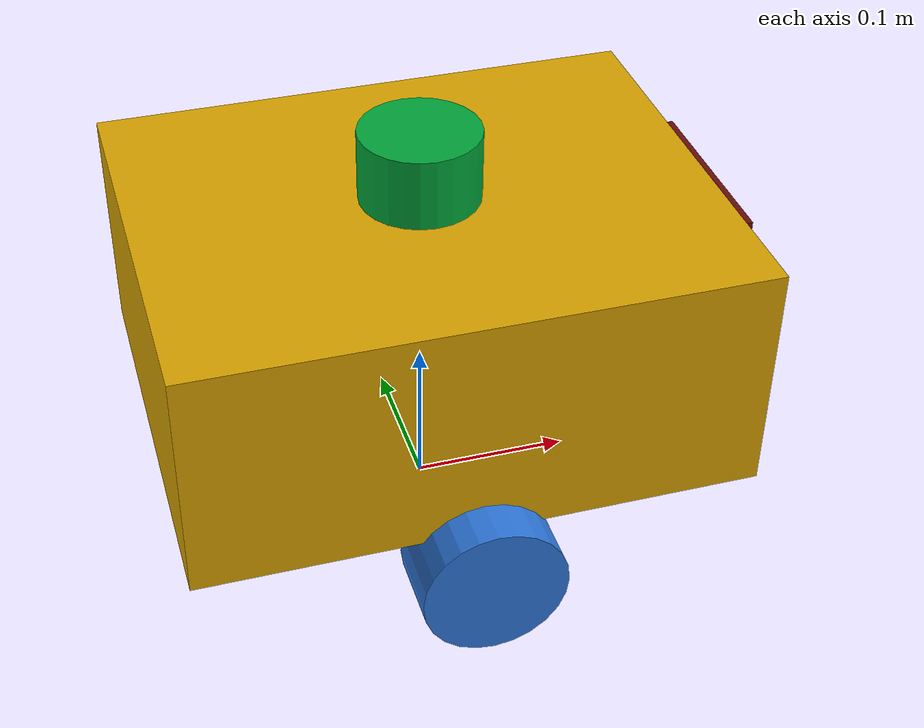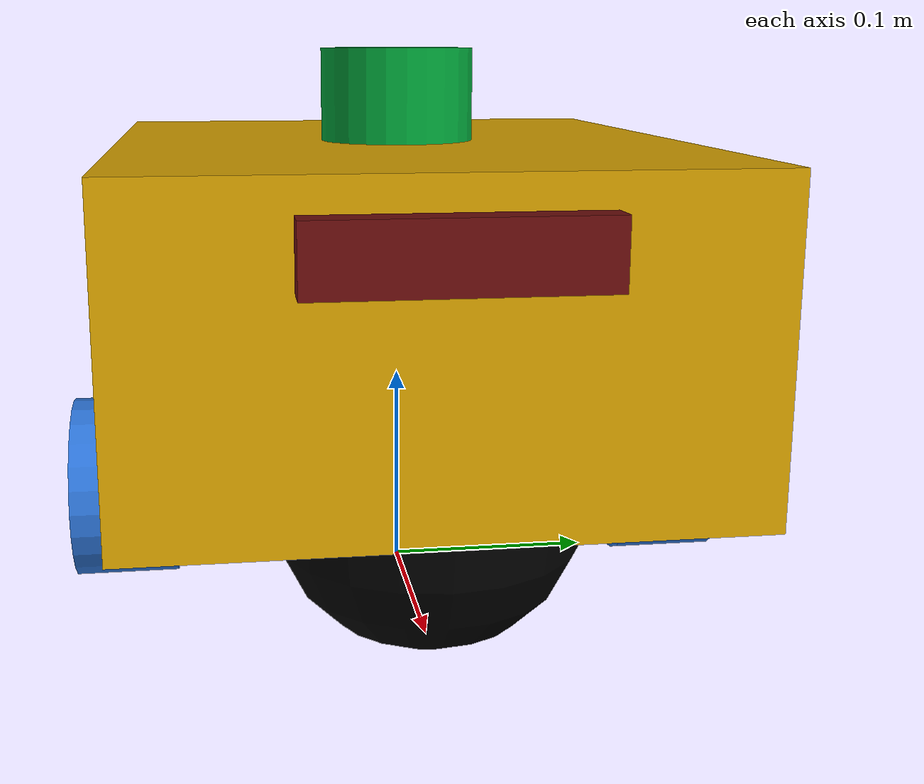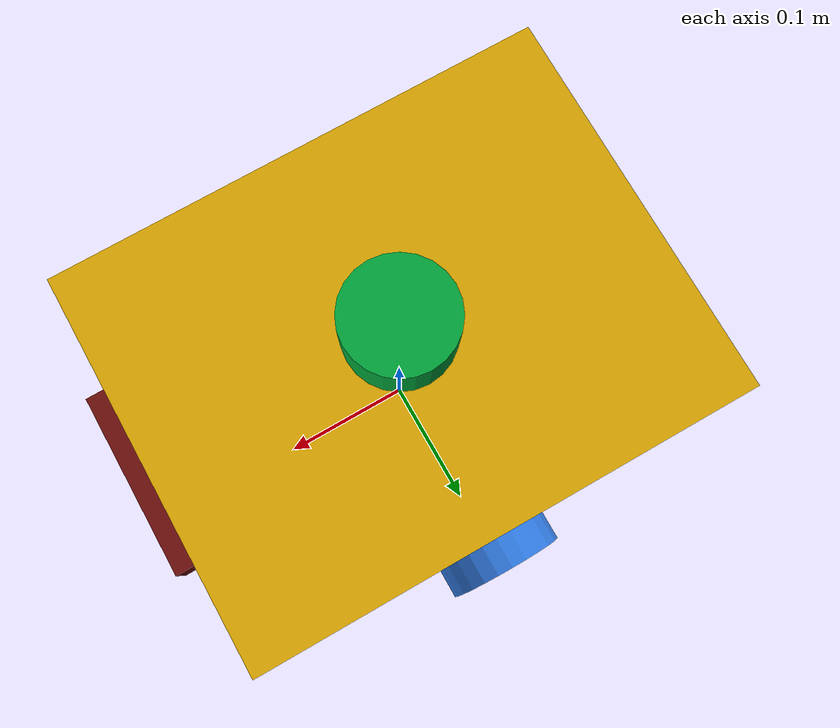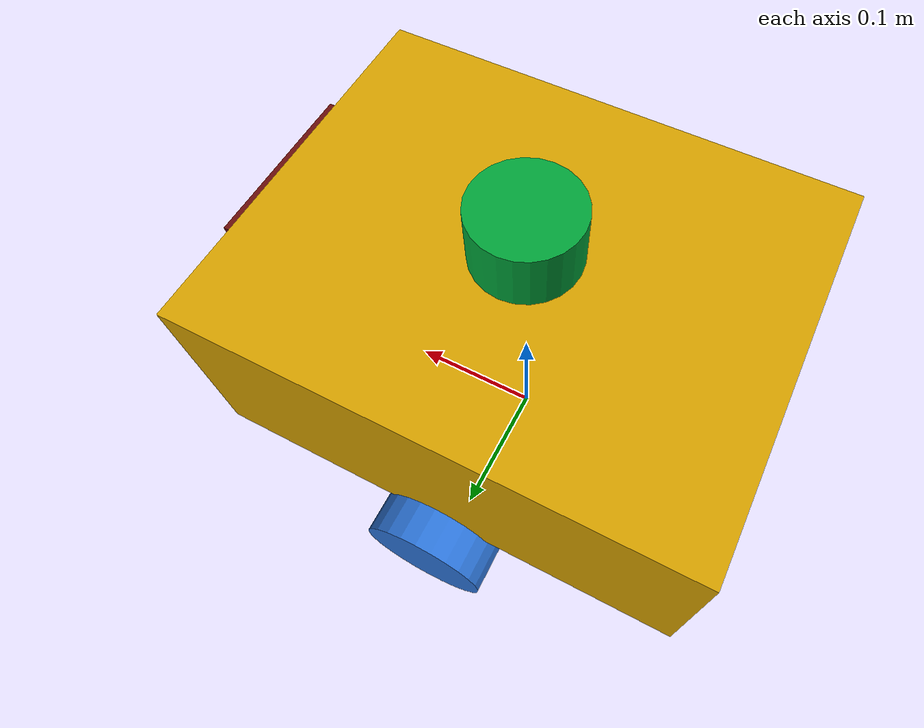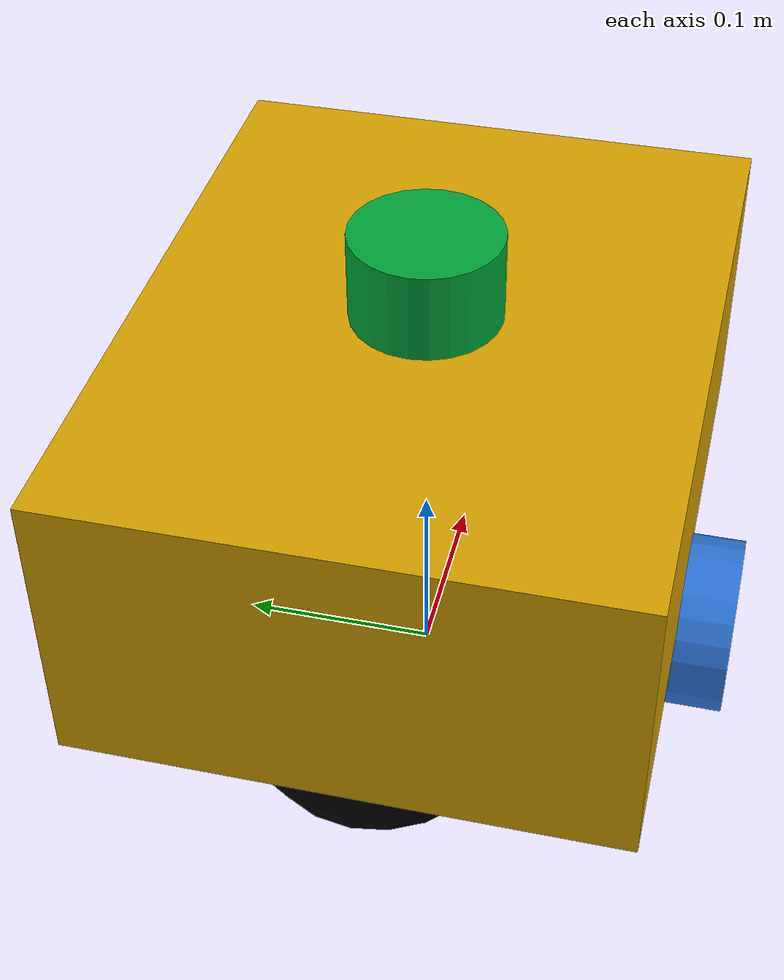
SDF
<sdf version='1.11'>
  <model name='robot_1'>
    <link name='base_footprint'>
      <inertial>
        <pose>0.018824701195219121 0 0.15824701195219129 0 0 0</pose>
        <mass>1.2549999999999999</mass>
        <inertia>
          <ixx>0.010056756759628161</ixx>
          <ixy>0</ixy>
          <ixz>-0.00075016434262948229</ixz>
          <iyy>0.01769991819389111</iyy>
          <iyz>0</iyz>
          <izz>0.020691588100929619</izz>
        </inertia>
      </inertial>
      <collision name='base_footprint_fixed_joint_lump__base_link_collision'>
        <pose>0 0 0.14499999999999999 0 0 0</pose>
        <geometry>
          <box>
            <size>0.34999999999999998 0.27500000000000002 0.14999999999999999</size>
          </box>
        </geometry>
        <surface>
          <contact>
            <ode/>
          </contact>
          <friction>
            <ode/>
          </friction>
        </surface>
      </collision>
      <collision name='base_footprint_fixed_joint_lump__camera_link_collision_1'>
        <pose>0.17499999999999999 0 0.19 0 0 0</pose>
        <geometry>
          <box>
            <size>0.029999999999999999 0.124 0.029999999999999999</size>
          </box>
        </geometry>
        <surface>
          <contact>
            <ode/>
          </contact>
          <friction>
            <ode/>
          </friction>
        </surface>
      </collision>
      <collision name='base_footprint_fixed_joint_lump__front_caster_wheel_link_collision_2'>
        <pose>0.10249999999999999 0 0.072500000000000009 0 0 0</pose>
        <geometry>
          <sphere>
            <radius>0.072500000000000009</radius>
          </sphere>
        </geometry>
        <surface>
          <contact>
            <ode/>
          </contact>
          <friction>
            <ode>
              <mu>0.01</mu>
              <mu2>0.01</mu2>
            </ode>
          </friction>
        </surface>
      </collision>
      <collision name='base_footprint_fixed_joint_lump__laser_collision_3'>
        <pose>0 0 0.23999999999999999 0 0 0</pose>
        <geometry>
          <cylinder>
            <length>0.050000000000000003</length>
            <radius>0.037499999999999999</radius>
          </cylinder>
        </geometry>
        <surface>
          <contact>
            <ode/>
          </contact>
          <friction>
            <ode/>
          </friction>
        </surface>
      </collision>
      <collision name='base_footprint_fixed_joint_lump__rear_caster_wheel_link_collision_4'>
        <pose>-0.10249999999999999 0 0.072500000000000009 0 0 0</pose>
        <geometry>
          <sphere>
            <radius>0.072500000000000009</radius>
          </sphere>
        </geometry>
        <surface>
          <contact>
            <ode/>
          </contact>
          <friction>
            <ode>
              <mu>0.01</mu>
              <mu2>0.01</mu2>
            </ode>
          </friction>
        </surface>
      </collision>
      <visual name='base_footprint_fixed_joint_lump__base_link_visual'>
        <pose>0 0 0.14499999999999999 0 0 0</pose>
        <geometry>
          <box>
            <size>0.34999999999999998 0.27500000000000002 0.14999999999999999</size>
          </box>
        </geometry>
        <material>
          <ambient>0.83920002 0.631399989 0 1</ambient>
          <diffuse>0.83920002 0.631399989 0 1</diffuse>
          <specular>0.99000001 0.99000001 0.99000001 1</specular>
          <emissive>0 0 0 0</emissive>
        </material>
      </visual>
      <visual name='base_footprint_fixed_joint_lump__camera_link_visual_1'>
        <pose>0.17499999999999999 0 0.19 0 0 0</pose>
        <geometry>
          <box>
            <size>0.029999999999999999 0.124 0.029999999999999999</size>
          </box>
        </geometry>
        <material>
          <ambient>0.416000009 0.050999999 0.0469999984 1</ambient>
          <diffuse>0.416000009 0.050999999 0.0469999984 1</diffuse>
          <specular>0.416000009 0.050999999 0.0469999984 1</specular>
          <emissive>0.416000009 0.050999999 0.0469999984 1</emissive>
        </material>
      </visual>
      <visual name='base_footprint_fixed_joint_lump__front_caster_wheel_link_visual_2'>
        <pose>0.10249999999999999 0 0.072500000000000009 0 0 0</pose>
        <geometry>
          <sphere>
            <radius>0.072500000000000009</radius>
          </sphere>
        </geometry>
        <material>
          <diffuse>0 0 0 1</diffuse>
          <ambient>0 0 0 1</ambient>
        </material>
      </visual>
      <visual name='base_footprint_fixed_joint_lump__laser_visual_3'>
        <pose>0 0 0.23999999999999999 0 0 0</pose>
        <geometry>
          <cylinder>
            <length>0.050000000000000003</length>
            <radius>0.037499999999999999</radius>
          </cylinder>
        </geometry>
        <material>
          <ambient>0.00300000003 0.638999999 0.223000005 1</ambient>
          <diffuse>0.00300000003 0.638999999 0.223000005 1</diffuse>
          <specular>0.00300000003 0.638999999 0.223000005 1</specular>
          <emissive>0 0 0 0</emissive>
        </material>
      </visual>
      <visual name='base_footprint_fixed_joint_lump__rear_caster_wheel_link_visual_4'>
        <pose>-0.10249999999999999 0 0.072500000000000009 0 0 0</pose>
        <geometry>
          <sphere>
            <radius>0.072500000000000009</radius>
          </sphere>
        </geometry>
        <material>
          <diffuse>0 0 0 1</diffuse>
          <ambient>0 0 0 1</ambient>
        </material>
      </visual>
      <sensor name='camera' type='rgbd_camera'>
        <topic>camera</topic>
        <update_rate>30</update_rate>
        <always_on>true</always_on>
        <visualize>true</visualize>
        <camera>
          <optical_frame_id>camera_depth_link</optical_frame_id>
          <horizontal_fov>1.50098</horizontal_fov>
          <image>
            <width>640</width>
            <height>480</height>
            <format>R8G8B8</format>
          </image>
          <clip>
            <near>0.29999999999999999</near>
            <far>100</far>
          </clip>
        </camera>
        <pose>0.17499999999999999 0 0.19 0 0 0</pose>
        <gz_frame_id>camera_link</gz_frame_id>
      </sensor>
      <sensor name='imu_sensor' type='imu'>
        <topic>imu/data</topic>
        <update_rate>50</update_rate>
        <always_on>true</always_on>
        <visualize>true</visualize>
        <pose>0 0 0.14499999999999999 0 0 0</pose>
        <gz_frame_id>imu_link</gz_frame_id>
        <imu/>
      </sensor>
      <sensor name='gpu_lidar' type='gpu_lidar'>
        <topic>scan</topic>
        <update_rate>10</update_rate>
        <always_on>true</always_on>
        <visualize>true</visualize>
        <lidar>
          <scan>
            <horizontal>
              <samples>360</samples>
              <resolution>1</resolution>
              <min_angle>-3.1415999999999999</min_angle>
              <max_angle>3.1415999999999999</max_angle>
            </horizontal>
            <vertical>
              <samples>1</samples>
              <resolution>1</resolution>
              <min_angle>0</min_angle>
              <max_angle>0</max_angle>
            </vertical>
          </scan>
          <range>
            <min>0.080000000000000002</min>
            <max>12</max>
            <resolution>0.01</resolution>
          </range>
        </lidar>
        <pose>0 0 0.26500000000000001 0 0 0</pose>
        <gz_frame_id>laser</gz_frame_id>
      </sensor>
    </link>
    <joint name='left_wheel_joint' type='revolute'>
      <pose relative_to='base_footprint'>0 0.14000000000000001 0.045000000000000012 0 0 0</pose>
      <parent>base_footprint</parent>
      <child>left_wheel_link</child>
      <axis>
        <xyz>0 1 0</xyz>
        <limit>
          <lower>-inf</lower>
          <upper>inf</upper>
        </limit>
        <dynamics>
          <spring_reference>0</spring_reference>
          <spring_stiffness>0</spring_stiffness>
        </dynamics>
      </axis>
    </joint>
    <link name='left_wheel_link'>
      <pose relative_to='left_wheel_joint'>0 0 0 0 0 0</pose>
      <inertial>
        <pose>0 0 0 0 0 0</pose>
        <mass>0.10000000000000001</mass>
        <inertia>
          <ixx>8.1000000000000017e-05</ixx>
          <ixy>0</ixy>
          <ixz>0</ixz>
          <iyy>8.1000000000000017e-05</iyy>
          <iyz>0</iyz>
          <izz>8.1000000000000017e-05</izz>
        </inertia>
      </inertial>
      <collision name='left_wheel_link_collision'>
        <pose>0 0 0 1.5707963267948959 0 0</pose>
        <geometry>
          <cylinder>
            <length>0.050000000000000003</length>
            <radius>0.044999999999999998</radius>
          </cylinder>
        </geometry>
        <surface>
          <contact>
            <ode/>
          </contact>
          <friction>
            <ode/>
          </friction>
        </surface>
      </collision>
      <visual name='left_wheel_link_visual'>
        <pose>0 0 0 1.5707963267948959 0 0</pose>
        <geometry>
          <cylinder>
            <length>0.050000000000000003</length>
            <radius>0.044999999999999998</radius>
          </cylinder>
        </geometry>
        <material>
          <ambient>0.176400006 0.458799988 0.850899994 1</ambient>
          <diffuse>0.176400006 0.458799988 0.850899994 1</diffuse>
          <specular>0.176400006 0.458799988 0.850899994 1</specular>
          <emissive>0 0 0 0</emissive>
        </material>
      </visual>
    </link>
    <joint name='right_wheel_joint' type='revolute'>
      <pose relative_to='base_footprint'>0 -0.14000000000000001 0.045000000000000012 0 0 0</pose>
      <parent>base_footprint</parent>
      <child>right_wheel_link</child>
      <axis>
        <xyz>0 1 0</xyz>
        <limit>
          <lower>-inf</lower>
          <upper>inf</upper>
        </limit>
        <dynamics>
          <spring_reference>0</spring_reference>
          <spring_stiffness>0</spring_stiffness>
        </dynamics>
      </axis>
    </joint>
    <link name='right_wheel_link'>
      <pose relative_to='right_wheel_joint'>0 0 0 0 0 0</pose>
      <inertial>
        <pose>0 0 0 0 0 0</pose>
        <mass>0.10000000000000001</mass>
        <inertia>
          <ixx>8.1000000000000017e-05</ixx>
          <ixy>0</ixy>
          <ixz>0</ixz>
          <iyy>8.1000000000000017e-05</iyy>
          <iyz>0</iyz>
          <izz>8.1000000000000017e-05</izz>
        </inertia>
      </inertial>
      <collision name='right_wheel_link_collision'>
        <pose>0 0 0 1.5707963267948959 0 0</pose>
        <geometry>
          <cylinder>
            <length>0.050000000000000003</length>
            <radius>0.044999999999999998</radius>
          </cylinder>
        </geometry>
        <surface>
          <contact>
            <ode/>
          </contact>
          <friction>
            <ode/>
          </friction>
        </surface>
      </collision>
      <visual name='right_wheel_link_visual'>
        <pose>0 0 0 1.5707963267948959 0 0</pose>
        <geometry>
          <cylinder>
            <length>0.050000000000000003</length>
            <radius>0.044999999999999998</radius>
          </cylinder>
        </geometry>
        <material>
          <ambient>0.176400006 0.458799988 0.850899994 1</ambient>
          <diffuse>0.176400006 0.458799988 0.850899994 1</diffuse>
          <specular>0.176400006 0.458799988 0.850899994 1</specular>
          <emissive>0 0 0 0</emissive>
        </material>
      </visual>
    </link>
    <plugin name='gz::sim::systems::Sensors' filename='gz-sim-sensors-system'>
      <render_engine>ogre2</render_engine>
    </plugin>
    <plugin name='gz::sim::systems::Imu' filename='gz-sim-imu-system'/>
    <plugin name='gz::sim::systems::DiffDrive' filename='gz-sim-diff-drive-system'>
      <topic>cmd_vel</topic>
      <child_frame_id>base_footprint</child_frame_id>
      <odom_topic>odom/unfiltered</odom_topic>
      <left_joint>left_wheel_joint</left_joint>
      <right_joint>right_wheel_joint</right_joint>
      <wheel_separation>0.28</wheel_separation>
      <wheel_radius>0.045</wheel_radius>
      <odom_publish_frequency>50</odom_publish_frequency>
    </plugin>
    <plugin name='gz::sim::systems::JointStatePublisher' filename='gz-sim-joint-state-publisher-system'>
      <topic>joint_states</topic>
      <update_rate>50</update_rate>
      <joint_name>left_wheel_joint</joint_name>
      <joint_name>right_wheel_joint</joint_name>
    </plugin>
    <frame name='camera_depth_joint' attached_to='camera_link'>
      <pose>0 0 0 0 0 0</pose>
    </frame>
    <frame name='camera_depth_link' attached_to='camera_depth_joint'>
      <pose>0 0 0 0 0 0</pose>
    </frame>
    <frame name='camera_to_base_link' attached_to='base_link'>
      <pose>0.17499999999999999 0 0.044999999999999998 0 0 0</pose>
    </frame>
    <frame name='camera_link' attached_to='camera_to_base_link'>
      <pose>0 0 0 0 0 0</pose>
    </frame>
    <frame name='front_caster_wheel_joint' attached_to='base_link'>
      <pose>0.10249999999999999 0 -0.072500000000000009 0 0 0</pose>
    </frame>
    <frame name='front_caster_wheel_link' attached_to='front_caster_wheel_joint'>
      <pose>0 0 0 0 0 0</pose>
    </frame>
    <frame name='imu_to_base_link' attached_to='base_link'>
      <pose>0 0 0 0 0 0</pose>
    </frame>
    <frame name='imu_link' attached_to='imu_to_base_link'>
      <pose>0 0 0 0 0 0</pose>
    </frame>
    <frame name='laser_to_base_link' attached_to='base_link'>
      <pose>0 0 0.12 0 0 0</pose>
    </frame>
    <frame name='laser' attached_to='laser_to_base_link'>
      <pose>0 0 0 0 0 0</pose>
    </frame>
    <frame name='rear_caster_wheel_joint' attached_to='base_link'>
      <pose>-0.10249999999999999 0 -0.072500000000000009 0 0 0</pose>
    </frame>
    <frame name='rear_caster_wheel_link' attached_to='rear_caster_wheel_joint'>
      <pose>0 0 0 0 0 0</pose>
    </frame>
    <frame name='base_to_footprint' attached_to='base_footprint'>
      <pose>0 0 0.14499999999999999 0 0 0</pose>
    </frame>
    <frame name='base_link' attached_to='base_to_footprint'>
      <pose>0 0 0 0 0 0</pose>
    </frame>
  </model>
</sdf>
